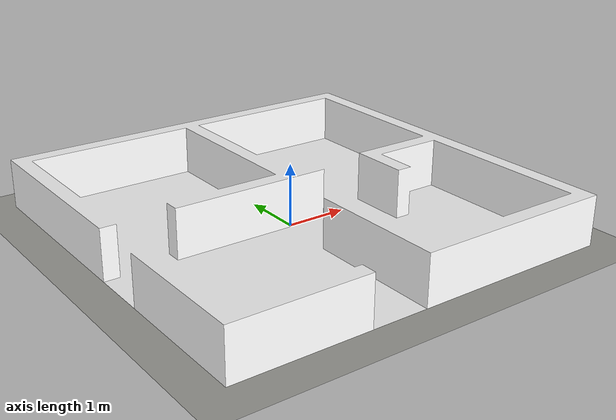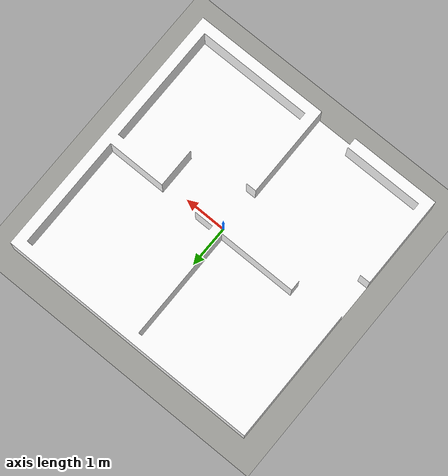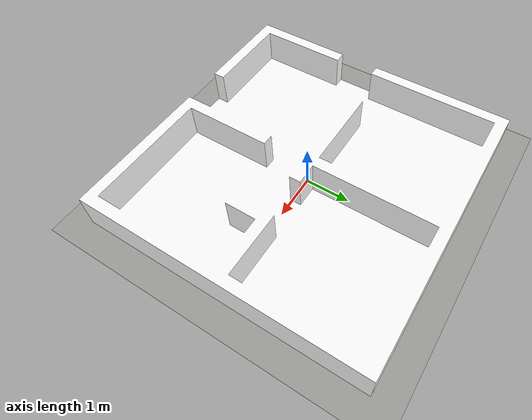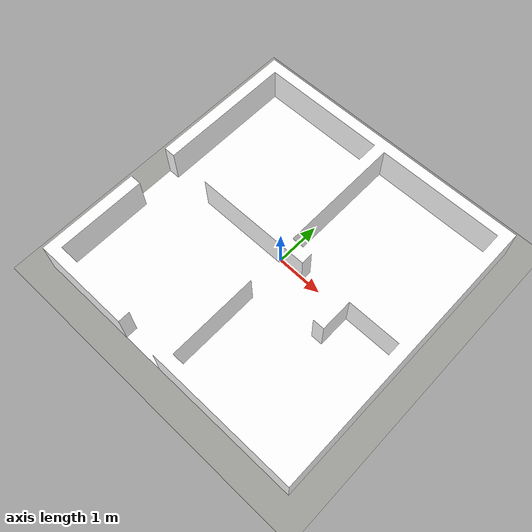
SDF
<?xml version="1.0"?>
<sdf version="1.10">
  <world name="microbot_world">
    <physics name="1ms" type="ignored">
      <max_step_size>0.001</max_step_size>
      <real_time_factor>1.0</real_time_factor>
      <real_time_update_rate>1000</real_time_update_rate>
    </physics>

    <plugin name="gz::sim::systems::Physics" filename="gz-sim-physics-system"/>
    <plugin name="gz::sim::systems::UserCommands" filename="gz-sim-user-commands-system"/>
    <plugin name="gz::sim::systems::SceneBroadcaster" filename="gz-sim-scene-broadcaster-system"/>
    <plugin name="gz::sim::systems::Sensors" filename="gz-sim-sensors-system">
      <render_engine>ogre2</render_engine>
    </plugin>
    <plugin name="gz::sim::systems::Imu" filename="gz-sim-imu-system"/>

    <gravity>0 0 -9.8</gravity>
    <magnetic_field>0.0000055645 0.0000228758 -0.0000423884</magnetic_field>
    <atmosphere type="adiabatic"/>

    <scene>
      <ambient>0.45 0.45 0.45 1</ambient>
      <background>0.70 0.72 0.74 1</background>
      <shadows>true</shadows>
    </scene>

    <light name="sun" type="directional">
      <pose>0 0 10 0 0 0</pose>
      <cast_shadows>true</cast_shadows>
      <intensity>1.0</intensity>
      <direction>-0.5 0.1 -0.9</direction>
      <diffuse>0.8 0.8 0.8 1</diffuse>
      <specular>0.2 0.2 0.2 1</specular>
      <attenuation>
        <range>1000</range>
        <constant>0.9</constant>
        <linear>0.01</linear>
        <quadratic>0.001</quadratic>
      </attenuation>
    </light>

    <model name="ground_plane">
      <static>true</static>
      <link name="link">
        <collision name="collision">
          <geometry>
            <plane>
              <normal>0 0 1</normal>
              <size>20 20</size>
            </plane>
          </geometry>
        </collision>
        <visual name="visual">
          <geometry>
            <plane>
              <normal>0 0 1</normal>
              <size>20 20</size>
            </plane>
          </geometry>
          <material>
            <ambient>0.62 0.62 0.60 1</ambient>
            <diffuse>0.62 0.62 0.60 1</diffuse>
          </material>
        </visual>
      </link>
    </model>

    <model name="arena">
      <static>true</static>
      <link name="arena_link">
        <pose>0 0 0.001 0 0 0</pose>
        <visual name="arena_visual">
          <geometry>
            <mesh>
              <uri>model://microbot_description/meshes/Arena.stl</uri>
              <scale>0.001 0.001 0.001</scale>
            </mesh>
          </geometry>
          <material>
            <ambient>1 1 1 1</ambient>
            <diffuse>1 1 1 1</diffuse>
            <specular>0.2 0.2 0.2 1</specular>
          </material>
        </visual>
        <collision name="arena_collision">
          <geometry>
            <mesh>
              <uri>model://microbot_description/meshes/Arena.stl</uri>
              <scale>0.001 0.001 0.001</scale>
            </mesh>
          </geometry>
        </collision>
      </link>
    </model>

    <gui>
      <camera name="user_camera">
        <pose>0 -0.45 0.22 0 0.45 1.5708</pose>
      </camera>
    </gui>
  </world>
</sdf>
